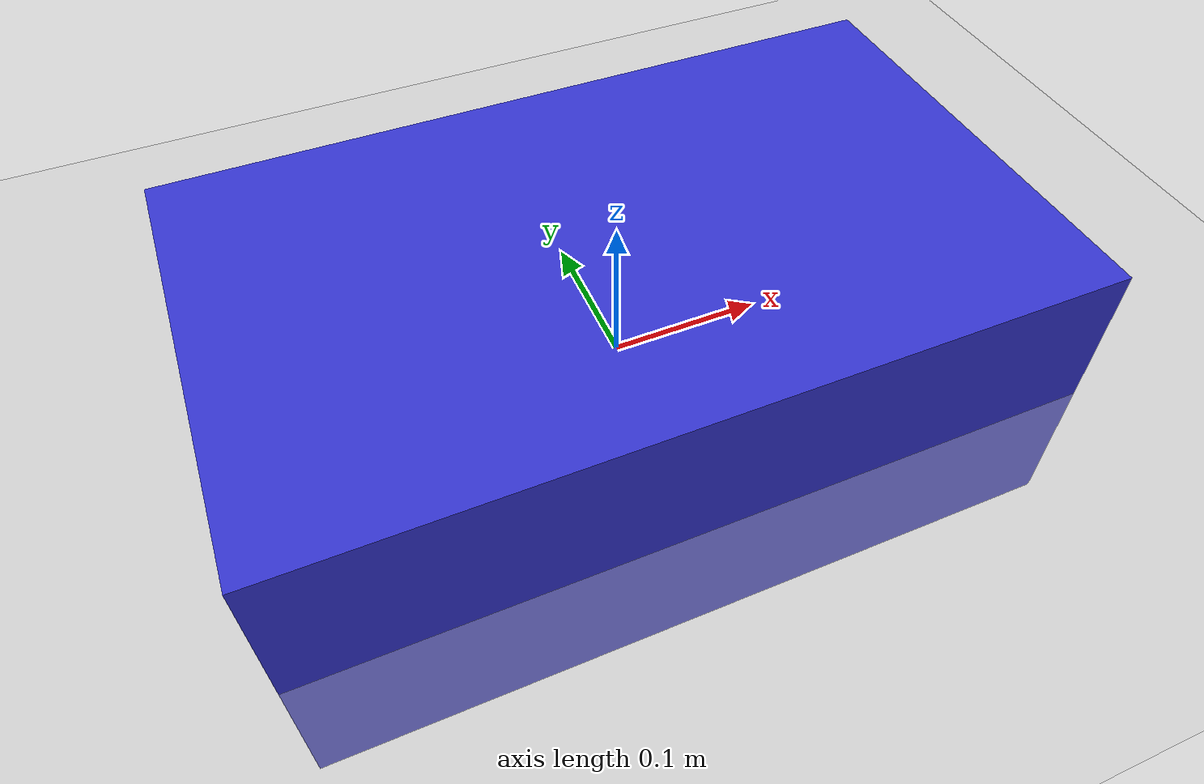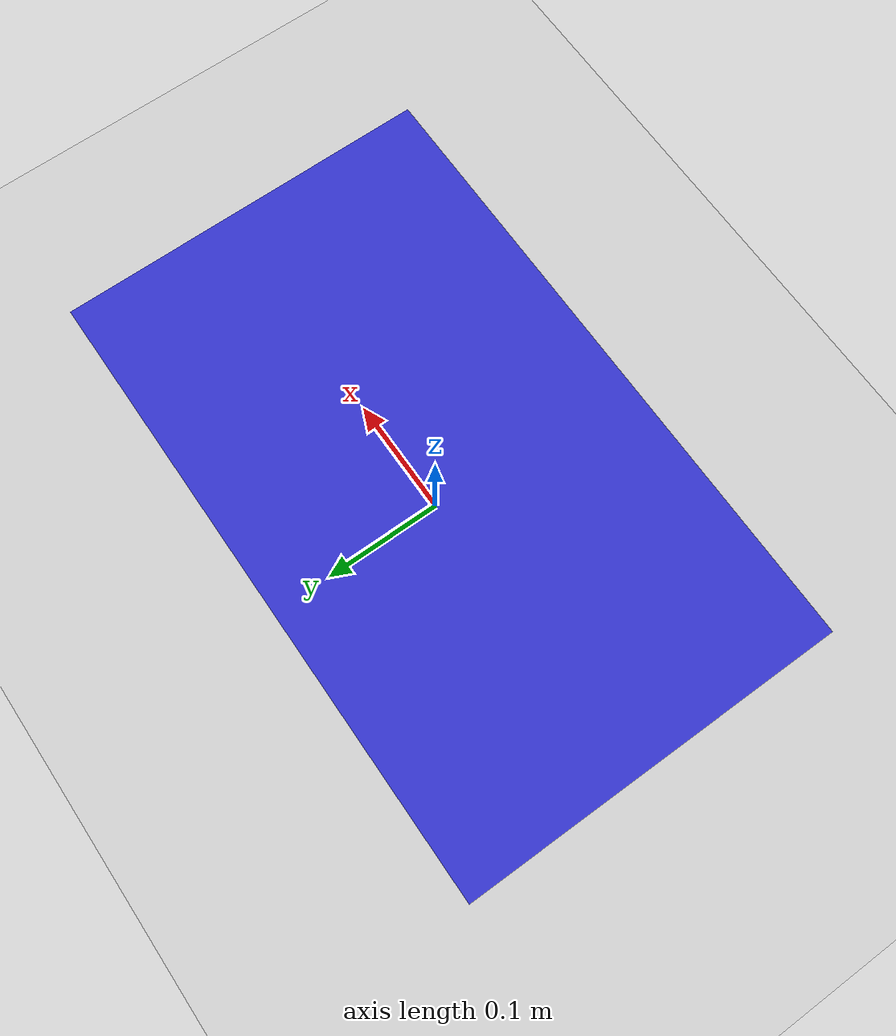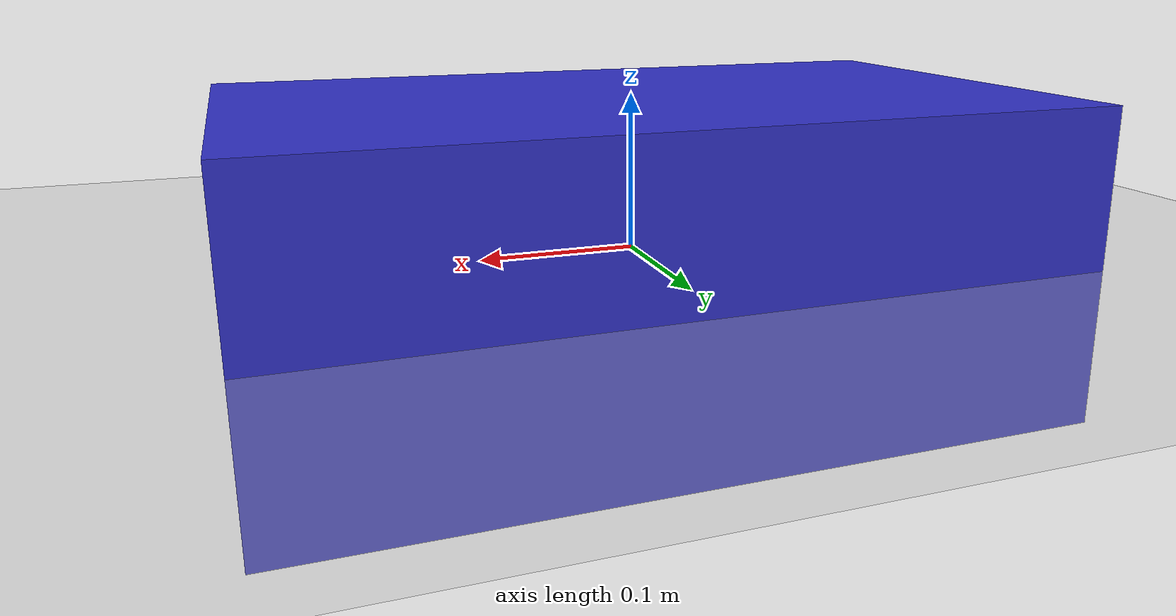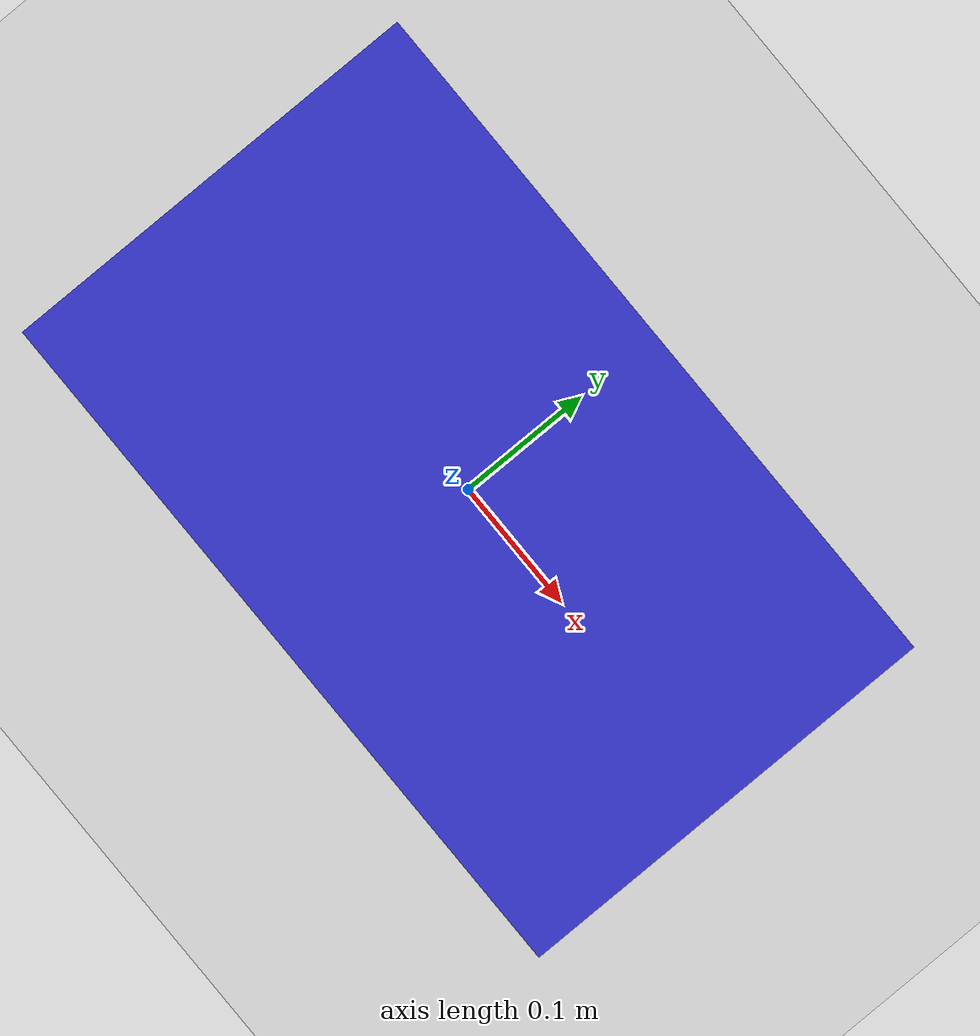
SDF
<sdf version='1.7'>
  <world name='default'>

    <!-- ===== LIGHTING ===== -->
    <light name='sun' type='directional'>
      <cast_shadows>1</cast_shadows>
      <pose>0 0 10 0 -0 0</pose>
      <diffuse>0.8 0.8 0.8 1</diffuse>
      <specular>0.2 0.2 0.2 1</specular>
      <attenuation>
        <range>1000</range>
        <constant>0.9</constant>
        <linear>0.01</linear>
        <quadratic>0.001</quadratic>
      </attenuation>
      <direction>-0.5 0.1 -0.9</direction>
    </light>

    <!-- ===== GROUND PLANE ===== -->
    <model name='ground_plane'>
      <static>1</static>
      <link name='link'>
        <collision name='collision'>
          <geometry>
            <plane>
              <normal>0 0 1</normal>
              <size>100 100</size>
            </plane>
          </geometry>
        </collision>

        <visual name='visual'>
          <geometry>
            <plane>
              <normal>0 0 1</normal>
              <size>100 100</size>
            </plane>
          </geometry>
          <material>
            <script>
              <uri>file://media/materials/scripts/gazebo.material</uri>
              <name>Gazebo/Grey</name>
            </script>
          </material>
        </visual>
      </link>
    </model>

    <!-- ===== ROV MODEL + PLUGIN ROS2 CONTROLLER ===== -->
    <model name="rov">
      <pose>0 0 0 0 0 0</pose>
      <static>false</static>

      <link name="base_link">
        <pose>0 0 0 0 0 0</pose>

        <!-- simple visual box as placeholder -->
        <visual name="body_visual">
          <geometry>
            <box>
              <size>0.5 0.3 0.2</size>
            </box>
          </geometry>
          <material>
            <ambient>0.2 0.2 0.8 1</ambient>
            <diffuse>0.2 0.2 0.8 1</diffuse>
          </material>
        </visual>

        <collision name="body_collision">
          <geometry>
            <box>
              <size>0.5 0.3 0.2</size>
            </box>
          </geometry>
        </collision>
      </link>

      <!-- ===== PLUGIN ROV CONTROLLER ===== -->
      <plugin name="rov_controller" filename="libcontroller.so">
        <ros>
          <namespace>/rov</namespace>
        </ros>
      </plugin>
    </model>

    <!-- ===== PHYSICS & WORLD SETTINGS ===== -->
    <gravity>0 0 0</gravity>

    <magnetic_field>6e-06 2.3e-05 -4.2e-05</magnetic_field>

    <physics type='ode'>
      <max_step_size>0.001</max_step_size>
      <real_time_factor>1</real_time_factor>
      <real_time_update_rate>1000</real_time_update_rate>
    </physics>

    <scene>
      <ambient>0.4 0.4 0.4 1</ambient>
      <background>0.7 0.7 0.7 1</background>
      <shadows>1</shadows>
    </scene>

    <!-- GUI CAMERA -->
    <gui fullscreen='0'>
      <camera name='user_camera'>
        <pose>5 -5 2 0 0.275643 2.35619</pose>
        <view_controller>orbit</view_controller>
        <projection_type>perspective</projection_type>
      </camera>
    </gui>

  </world>
</sdf>
